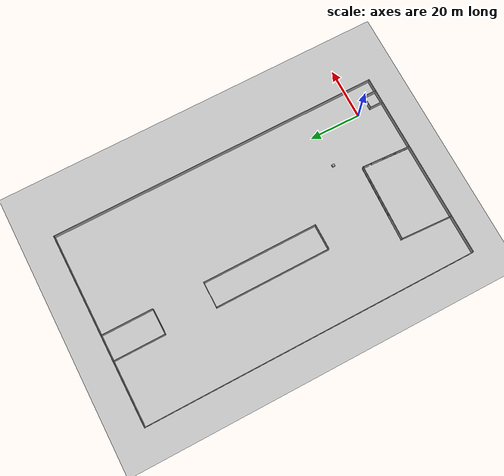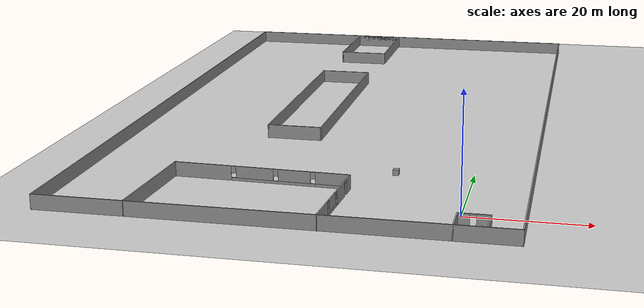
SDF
<sdf version="1.4">
 <world name="default">
  <physics type="ode">
   <max_step_size>0.002</max_step_size>
   <real_time_update_rate>500</real_time_update_rate>
   <real_time_factor>1</real_time_factor>
   <gravity>0 0 -9.8</gravity>
  </physics>
  <light name="sun" type="directional">
   <pose>0 0 10 0 -0 0</pose>
   <diffuse>0.8 0.8 0.8 1</diffuse>
   <specular>0.2 0.2 0.2 1</specular>
   <attenuation>
    <range>1000</range>
    <constant>0.9</constant>
    <linear>0.01</linear>
    <quadratic>0.001</quadratic>
   </attenuation>
   <direction>-0.5 0.1 -0.9</direction>
  </light>
  <model name="ground_plane">
   <static>1</static>
   <link name="link">
    <collision name="collision">
     <geometry><plane><normal>0 0 1</normal><size>75 130</size></plane></geometry>
     <pose>-27.5 55 0 0 -0 0</pose>
     <surface><friction><ode><mu>100</mu><mu2>50</mu2></ode></friction></surface>
    </collision>
    <visual name="visual">
     <cast_shadows>0</cast_shadows>
     <pose>-27.5 55 0 0 -0 0</pose>
     <geometry><plane><normal>0 0 1</normal><size>75 130</size></plane></geometry>
     <material>
      <script><uri>file://media/materials/scripts/gazebo.material</uri><name>Gazebo/Grey</name></script>
     </material>
    </visual>
    <velocity_decay><linear>0</linear><angular>0</angular></velocity_decay>
   </link>
  </model>
  <model name="saint_cyr_limits">
   <link name="Wall_27">
    <collision name="Wall_27_Collision">
     <geometry><box><size>75.2 0.2 2.5</size></box></geometry>
     <pose>0 0 1.25 0 -0 0</pose>
    </collision>
    <visual name="Wall_27_Visual">
     <pose>0 0 1.25 0 -0 0</pose>
     <geometry><box><size>75.2 0.2 2.5</size></box></geometry>
     <material>
      <script><uri>file://media/materials/scripts/gazebo.material</uri><name>Gazebo/Grey</name></script>
     </material>
    </visual>
    <velocity_decay><linear>0</linear><angular>0</angular></velocity_decay>
    <pose>-27.5 -10 0 0 -0 0</pose>
   </link>
   <link name="Wall_29">
    <collision name="Wall_29_Collision">
     <geometry><box><size>130.2 0.2 2.5</size></box></geometry>
     <pose>0 0 1.25 0 -0 0</pose>
    </collision>
    <visual name="Wall_29_Visual">
     <pose>0 0 1.25 0 -0 0</pose>
     <geometry><box><size>130.2 0.2 2.5</size></box></geometry>
     <material>
      <script><uri>file://media/materials/scripts/gazebo.material</uri><name>Gazebo/Grey</name></script>
     </material>
    </visual>
    <velocity_decay><linear>0</linear><angular>0</angular></velocity_decay>
    <pose>10 55 0 0 -0 1.5708</pose>
   </link>
   <link name="Wall_31">
    <collision name="Wall_31_Collision">
     <geometry><box><size>75.2 0.2 2.5</size></box></geometry>
     <pose>0 0 1.25 0 -0 0</pose>
    </collision>
    <visual name="Wall_31_Visual">
     <pose>0 0 1.25 0 -0 0</pose>
     <geometry><box><size>75.2 0.2 2.5</size></box></geometry>
     <material>
      <script><uri>file://media/materials/scripts/gazebo.material</uri><name>Gazebo/Grey</name></script>
     </material>
    </visual>
    <velocity_decay><linear>0</linear><angular>0</angular></velocity_decay>
    <pose>-27.5 120 0 0 -0 3.14159</pose>
   </link>
   <link name="Wall_33">
    <collision name="Wall_33_Collision">
     <geometry><box><size>130.2 0.2 2.5</size></box></geometry>
     <pose>0 0 1.25 0 -0 0</pose>
    </collision>
    <visual name="Wall_33_Visual">
     <pose>0 0 1.25 0 -0 0</pose>
     <geometry><box><size>130.2 0.2 2.5</size></box></geometry>
     <material>
      <script><uri>file://media/materials/scripts/gazebo.material</uri><name>Gazebo/Grey</name></script>
     </material>
    </visual>
    <velocity_decay><linear>0</linear><angular>0</angular></velocity_decay>
    <pose>-65 55 0 0 0 -1.5708</pose>
   </link>
   <static>1</static>
  </model>
  <model name="saint_cyr_trees">
   <link name="Wall_0">
    <collision name="Wall_0_Collision">
     <geometry><box><size>20.225 0.2 2.5</size></box></geometry>
     <pose>0 0 1.25 0 -0 0</pose>
    </collision>
    <visual name="Wall_0_Visual">
     <pose>0 0 1.25 0 -0 0</pose>
     <geometry><box><size>20.225 0.2 2.5</size></box></geometry>
     <material>
      <script><uri>file://media/materials/scripts/gazebo.material</uri><name>Gazebo/Grey</name></script>
     </material>
    </visual>
    <velocity_decay><linear>0</linear><angular>0</angular></velocity_decay>
    <pose>-49.5 0 0 0 -0 1.52084</pose>
   </link>
   <link name="Wall_1">
    <pose>-34 9.5 0 0 0 -0.033321</pose>
    <visual name="Wall_1_Visual_0">
     <pose>-10.1177 0 1.25 0 -0 0</pose>
     <geometry><box><size>9.98129 0.2 2.5</size></box></geometry>
     <material>
      <script><uri>file://media/materials/scripts/gazebo.material</uri><name>Gazebo/Grey</name></script>
     </material>
    </visual>
    <collision name="Wall_1_Collision_0">
     <geometry><box><size>9.98129 0.2 2.5</size></box></geometry>
     <pose>-10.1177 0 1.25 0 -0 0</pose>
    </collision>
    <visual name="Wall_1_Visual_1">
     <pose>4.99065 0 0.25 0 -0 0</pose>
     <geometry><box><size>20.2354 0.2 0.5</size></box></geometry>
     <material>
      <script><uri>file://media/materials/scripts/gazebo.material</uri><name>Gazebo/Grey</name></script>
     </material>
    </visual>
    <collision name="Wall_1_Collision_1">
     <geometry><box><size>20.2354 0.2 0.5</size></box></geometry>
     <pose>4.99065 0 0.25 0 -0 0</pose>
    </collision>
    <visual name="Wall_1_Visual_2">
     <pose>-1.11012 0 1.5 0 -0 0</pose>
     <geometry><box><size>6.43387 0.2 2</size></box></geometry>
     <material>
      <script><uri>file://media/materials/scripts/gazebo.material</uri><name>Gazebo/Grey</name></script>
     </material>
    </visual>
    <collision name="Wall_1_Collision_2">
     <geometry><box><size>6.43387 0.2 2</size></box></geometry>
     <pose>-1.11012 0 1.5 0 -0 0</pose>
    </collision>
    <visual name="Wall_1_Visual_3">
     <pose>5.65364 0 1.5 0 -0 0</pose>
     <geometry><box><size>5.49367 0.2 2</size></box></geometry>
     <material>
      <script><uri>file://media/materials/scripts/gazebo.material</uri><name>Gazebo/Grey</name></script>
     </material>
    </visual>
    <collision name="Wall_1_Collision_3">
     <geometry><box><size>5.49367 0.2 2</size></box></geometry>
     <pose>5.65364 0 1.5 0 -0 0</pose>
    </collision>
    <visual name="Wall_1_Visual_4">
     <pose>12.1544 0 1.5 0 -0 0</pose>
     <geometry><box><size>5.90787 0.2 2</size></box></geometry>
     <material>
      <script><uri>file://media/materials/scripts/gazebo.material</uri><name>Gazebo/Grey</name></script>
     </material>
    </visual>
    <collision name="Wall_1_Collision_4">
     <geometry><box><size>5.90787 0.2 2</size></box></geometry>
     <pose>12.1544 0 1.5 0 -0 0</pose>
    </collision>
    <visual name="Wall_1_Visual_5">
     <pose>-4.72706 0 1.9 0 -0 0</pose>
     <geometry><box><size>0.8 0.2 1.2</size></box></geometry>
     <material>
      <script><uri>file://media/materials/scripts/gazebo.material</uri><name>Gazebo/Grey</name></script>
     </material>
    </visual>
    <collision name="Wall_1_Collision_5">
     <geometry><box><size>0.8 0.2 1.2</size></box></geometry>
     <pose>-4.72706 0 1.9 0 -0 0</pose>
    </collision>
    <visual name="Wall_1_Visual_6">
     <pose>2.50681 0 1.9 0 -0 0</pose>
     <geometry><box><size>0.8 0.2 1.2</size></box></geometry>
     <material>
      <script><uri>file://media/materials/scripts/gazebo.material</uri><name>Gazebo/Grey</name></script>
     </material>
    </visual>
    <collision name="Wall_1_Collision_6">
     <geometry><box><size>0.8 0.2 1.2</size></box></geometry>
     <pose>2.50681 0 1.9 0 -0 0</pose>
    </collision>
    <visual name="Wall_1_Visual_7">
     <pose>8.80048 0 1.9 0 -0 0</pose>
     <geometry><box><size>0.8 0.2 1.2</size></box></geometry>
     <material>
      <script><uri>file://media/materials/scripts/gazebo.material</uri><name>Gazebo/Grey</name></script>
     </material>
    </visual>
    <collision name="Wall_1_Collision_7">
     <geometry><box><size>0.8 0.2 1.2</size></box></geometry>
     <pose>8.80048 0 1.9 0 -0 0</pose>
    </collision>
    <velocity_decay><linear>0</linear><angular>0</angular></velocity_decay>
   </link>
   <link name="Wall_10">
    <collision name="Wall_10_Collision">
     <geometry><box><size>45.2 0.2 2.5</size></box></geometry>
     <pose>0 0 1.25 0 -0 0</pose>
    </collision>
    <visual name="Wall_10_Visual">
     <pose>0 0 1.25 0 -0 0</pose>
     <geometry><box><size>45.2 0.2 2.5</size></box></geometry>
     <material>
      <script><uri>file://media/materials/scripts/gazebo.material</uri><name>Gazebo/Grey</name></script>
     </material>
    </visual>
    <velocity_decay><linear>0</linear><angular>0</angular></velocity_decay>
    <pose>-30 57.5 0 0 -0 1.5708</pose>
   </link>
   <link name="Wall_11">
    <collision name="Wall_11_Collision">
     <geometry><box><size>10.2 0.2 2.5</size></box></geometry>
     <pose>0 0 1.25 0 -0 0</pose>
    </collision>
    <visual name="Wall_11_Visual">
     <pose>0 0 1.25 0 -0 0</pose>
     <geometry><box><size>10.2 0.2 2.5</size></box></geometry>
     <material>
      <script><uri>file://media/materials/scripts/gazebo.material</uri><name>Gazebo/Grey</name></script>
     </material>
    </visual>
    <velocity_decay><linear>0</linear><angular>0</angular></velocity_decay>
    <pose>-35 80 0 0 -0 3.14159</pose>
   </link>
   <link name="Wall_13">
    <collision name="Wall_13_Collision">
     <geometry><box><size>20.2 0.2 2.5</size></box></geometry>
     <pose>0 0 1.25 0 -0 0</pose>
    </collision>
    <visual name="Wall_13_Visual">
     <pose>0 0 1.25 0 -0 0</pose>
     <geometry><box><size>20.2 0.2 2.5</size></box></geometry>
     <material>
      <script><uri>file://media/materials/scripts/gazebo.material</uri><name>Gazebo/Grey</name></script>
     </material>
    </visual>
    <velocity_decay><linear>0</linear><angular>0</angular></velocity_decay>
    <pose>-40 110 0 0 0 -1.5708</pose>
   </link>
   <link name="Wall_14">
    <collision name="Wall_14_Collision">
     <geometry><box><size>10.2 0.2 2.5</size></box></geometry>
     <pose>0 0 1.25 0 -0 0</pose>
    </collision>
    <visual name="Wall_14_Visual">
     <pose>0 0 1.25 0 -0 0</pose>
     <geometry><box><size>10.2 0.2 2.5</size></box></geometry>
     <material>
      <script><uri>file://media/materials/scripts/gazebo.material</uri><name>Gazebo/Grey</name></script>
     </material>
    </visual>
    <velocity_decay><linear>0</linear><angular>0</angular></velocity_decay>
    <pose>-35 100 0 0 -0 0</pose>
   </link>
   <link name="Wall_15">
    <collision name="Wall_15_Collision">
     <geometry><box><size>20.2 0.2 2.5</size></box></geometry>
     <pose>0 0 1.25 0 -0 0</pose>
    </collision>
    <visual name="Wall_15_Visual">
     <pose>0 0 1.25 0 -0 0</pose>
     <geometry><box><size>20.2 0.2 2.5</size></box></geometry>
     <material>
      <script><uri>file://media/materials/scripts/gazebo.material</uri><name>Gazebo/Grey</name></script>
     </material>
    </visual>
    <velocity_decay><linear>0</linear><angular>0</angular></velocity_decay>
    <pose>-30 110 0 0 -0 1.5708</pose>
   </link>
   <link name="Wall_16">
    <collision name="Wall_16_Collision">
     <geometry><box><size>10.2 0.2 2.5</size></box></geometry>
     <pose>0 0 1.25 0 -0 0</pose>
    </collision>
    <visual name="Wall_16_Visual">
     <pose>0 0 1.25 0 -0 0</pose>
     <geometry><box><size>10.2 0.2 2.5</size></box></geometry>
     <material>
      <script><uri>file://media/materials/scripts/gazebo.material</uri><name>Gazebo/Grey</name></script>
     </material>
    </visual>
    <velocity_decay><linear>0</linear><angular>0</angular></velocity_decay>
    <pose>-35 120 0 0 -0 3.14159</pose>
   </link>
   <link name="Wall_2">
    <pose>-19.5 -0.5 0 0 0 -1.62338</pose>
    <visual name="Wall_2_Visual_0">
     <pose>-8.31308 0 1.25 0 -0 0</pose>
     <geometry><box><size>2.60014 0.2 2.5</size></box></geometry>
     <material>
      <script><uri>file://media/materials/scripts/gazebo.material</uri><name>Gazebo/Grey</name></script>
     </material>
    </visual>
    <collision name="Wall_2_Collision_0">
     <geometry><box><size>2.60014 0.2 2.5</size></box></geometry>
     <pose>-8.31308 0 1.25 0 -0 0</pose>
    </collision>
    <visual name="Wall_2_Visual_1">
     <pose>-3.68568 0 1.25 0 -0 0</pose>
     <geometry><box><size>4.65465 0.2 2.5</size></box></geometry>
     <material>
      <script><uri>file://media/materials/scripts/gazebo.material</uri><name>Gazebo/Grey</name></script>
     </material>
    </visual>
    <collision name="Wall_2_Collision_1">
     <geometry><box><size>4.65465 0.2 2.5</size></box></geometry>
     <pose>-3.68568 0 1.25 0 -0 0</pose>
    </collision>
    <visual name="Wall_2_Visual_2">
     <pose>4.1274 0 0.25 0 -0 0</pose>
     <geometry><box><size>10.9715 0.2 0.5</size></box></geometry>
     <material>
      <script><uri>file://media/materials/scripts/gazebo.material</uri><name>Gazebo/Grey</name></script>
     </material>
    </visual>
    <collision name="Wall_2_Collision_2">
     <geometry><box><size>10.9715 0.2 0.5</size></box></geometry>
     <pose>4.1274 0 0.25 0 -0 0</pose>
    </collision>
    <visual name="Wall_2_Visual_3">
     <pose>1.25925 0 1.5 0 -0 0</pose>
     <geometry><box><size>3.63521 0.2 2</size></box></geometry>
     <material>
      <script><uri>file://media/materials/scripts/gazebo.material</uri><name>Gazebo/Grey</name></script>
     </material>
    </visual>
    <collision name="Wall_2_Collision_3">
     <geometry><box><size>3.63521 0.2 2</size></box></geometry>
     <pose>1.25925 0 1.5 0 -0 0</pose>
    </collision>
    <visual name="Wall_2_Visual_4">
     <pose>6.745 0 1.5 0 -0 0</pose>
     <geometry><box><size>5.7363 0.2 2</size></box></geometry>
     <material>
      <script><uri>file://media/materials/scripts/gazebo.material</uri><name>Gazebo/Grey</name></script>
     </material>
    </visual>
    <collision name="Wall_2_Collision_4">
     <geometry><box><size>5.7363 0.2 2</size></box></geometry>
     <pose>6.745 0 1.5 0 -0 0</pose>
    </collision>
    <visual name="Wall_2_Visual_5">
     <pose>-0.958357 0 1.9 0 -0 0</pose>
     <geometry><box><size>0.8 0.2 1.2</size></box></geometry>
     <material>
      <script><uri>file://media/materials/scripts/gazebo.material</uri><name>Gazebo/Grey</name></script>
     </material>
    </visual>
    <collision name="Wall_2_Collision_5">
     <geometry><box><size>0.8 0.2 1.2</size></box></geometry>
     <pose>-0.958357 0 1.9 0 -0 0</pose>
    </collision>
    <visual name="Wall_2_Visual_6">
     <pose>3.47685 0 1.9 0 -0 0</pose>
     <geometry><box><size>0.8 0.2 1.2</size></box></geometry>
     <material>
      <script><uri>file://media/materials/scripts/gazebo.material</uri><name>Gazebo/Grey</name></script>
     </material>
    </visual>
    <collision name="Wall_2_Collision_6">
     <geometry><box><size>0.8 0.2 1.2</size></box></geometry>
     <pose>3.47685 0 1.9 0 -0 0</pose>
    </collision>
    <visual name="Wall_2_Visual_7">
     <pose>-6.51301 0 2.25 0 -0 0</pose>
     <geometry><box><size>1 0.2 0.5</size></box></geometry>
     <material>
      <script><uri>file://media/materials/scripts/gazebo.material</uri><name>Gazebo/Grey</name></script>
     </material>
    </visual>
    <collision name="Wall_2_Collision_7">
     <geometry><box><size>1 0.2 0.5</size></box></geometry>
     <pose>-6.51301 0 2.25 0 -0 0</pose>
    </collision>
    <velocity_decay><linear>0</linear><angular>0</angular></velocity_decay>
   </link>
   <link name="Wall_4">
    <collision name="Wall_4_Collision">
     <geometry><box><size>5.2 0.2 2.5</size></box></geometry>
     <pose>0 0 1.25 0 -0 0</pose>
    </collision>
    <visual name="Wall_4_Visual">
     <pose>0 0 1.25 0 -0 0</pose>
     <geometry><box><size>5.2 0.2 2.5</size></box></geometry>
     <material>
      <script><uri>file://media/materials/scripts/gazebo.material</uri><name>Gazebo/Grey</name></script>
     </material>
    </visual>
    <velocity_decay><linear>0</linear><angular>0</angular></velocity_decay>
    <pose>0 -7.5 0 0 -0 1.5708</pose>
   </link>
   <link name="Wall_5">
    <pose>2.5 -5 0 0 -0 0</pose>
    <visual name="Wall_5_Visual_0">
     <pose>-1.61975 0 1.25 0 -0 0</pose>
     <geometry><box><size>1.9605 0.2 2.5</size></box></geometry>
     <material>
      <script><uri>file://media/materials/scripts/gazebo.material</uri><name>Gazebo/Grey</name></script>
     </material>
    </visual>
    <collision name="Wall_5_Collision_0">
     <geometry><box><size>1.9605 0.2 2.5</size></box></geometry>
     <pose>-1.61975 0 1.25 0 -0 0</pose>
    </collision>
    <visual name="Wall_5_Visual_1">
     <pose>1.48025 0 1.25 0 -0 0</pose>
     <geometry><box><size>2.2395 0.2 2.5</size></box></geometry>
     <material>
      <script><uri>file://media/materials/scripts/gazebo.material</uri><name>Gazebo/Grey</name></script>
     </material>
    </visual>
    <collision name="Wall_5_Collision_1">
     <geometry><box><size>2.2395 0.2 2.5</size></box></geometry>
     <pose>1.48025 0 1.25 0 -0 0</pose>
    </collision>
    <visual name="Wall_5_Visual_2">
     <pose>-0.139498 0 2.25 0 -0 0</pose>
     <geometry><box><size>1 0.2 0.5</size></box></geometry>
     <material>
      <script><uri>file://media/materials/scripts/gazebo.material</uri><name>Gazebo/Grey</name></script>
     </material>
    </visual>
    <collision name="Wall_5_Collision_2">
     <geometry><box><size>1 0.2 0.5</size></box></geometry>
     <pose>-0.139498 0 2.25 0 -0 0</pose>
    </collision>
    <velocity_decay><linear>0</linear><angular>0</angular></velocity_decay>
   </link>
   <link name="Wall_6">
    <collision name="Wall_6_Collision">
     <geometry><box><size>5.2 0.2 2.5</size></box></geometry>
     <pose>0 0 1.25 0 -0 0</pose>
    </collision>
    <visual name="Wall_6_Visual">
     <pose>0 0 1.25 0 -0 0</pose>
     <geometry><box><size>5.2 0.2 2.5</size></box></geometry>
     <material>
      <script><uri>file://media/materials/scripts/gazebo.material</uri><name>Gazebo/Grey</name></script>
     </material>
    </visual>
    <velocity_decay><linear>0</linear><angular>0</angular></velocity_decay>
    <pose>5 -7.5 0 0 0 -1.5708</pose>
   </link>
   <link name="Wall_8">
    <collision name="Wall_8_Collision">
     <geometry><box><size>45.2 0.2 2.5</size></box></geometry>
     <pose>0 0 1.25 0 -0 0</pose>
    </collision>
    <visual name="Wall_8_Visual">
     <pose>0 0 1.25 0 -0 0</pose>
     <geometry><box><size>45.2 0.2 2.5</size></box></geometry>
     <material>
      <script><uri>file://media/materials/scripts/gazebo.material</uri><name>Gazebo/Grey</name></script>
     </material>
    </visual>
    <velocity_decay><linear>0</linear><angular>0</angular></velocity_decay>
    <pose>-40 57.5 0 0 0 -1.5708</pose>
   </link>
   <link name="Wall_9">
    <collision name="Wall_9_Collision">
     <geometry><box><size>10.2 0.2 2.5</size></box></geometry>
     <pose>0 0 1.25 0 -0 0</pose>
    </collision>
    <visual name="Wall_9_Visual">
     <pose>0 0 1.25 0 -0 0</pose>
     <geometry><box><size>10.2 0.2 2.5</size></box></geometry>
     <material>
      <script><uri>file://media/materials/scripts/gazebo.material</uri><name>Gazebo/Grey</name></script>
     </material>
    </visual>
    <velocity_decay><linear>0</linear><angular>0</angular></velocity_decay>
    <pose>-35 35 0 0 -0 0</pose>
   </link>
   <static>1</static>
  </model>
  <scene><ambient>0.4 0.4 0.4 1</ambient><background>0.7 0.7 0.7 1</background><shadows>1</shadows></scene>
  <spherical_coordinates>
   <surface_model>EARTH_WGS84</surface_model>
   <latitude_deg>0</latitude_deg>
   <longitude_deg>0</longitude_deg>
   <elevation>0</elevation>
   <heading_deg>0</heading_deg>
  </spherical_coordinates>
  <model name="unit_box_1">
   <pose>-13 18 0.5 0 -0 0</pose>
   <link name="link">
    <inertial>
     <mass>1</mass>
     <inertia><ixx>1</ixx><ixy>0</ixy><ixz>0</ixz><iyy>1</iyy><iyz>0</iyz><izz>1</izz></inertia>
    </inertial>
    <collision name="collision"><geometry><box><size>1 1 1</size></box></geometry></collision>
    <visual name="visual">
     <geometry><box><size>1 1 1</size></box></geometry>
     <material>
      <script><uri>file://media/materials/scripts/gazebo.material</uri><name>Gazebo/Grey</name></script>
     </material>
    </visual>
    <velocity_decay><linear>0</linear><angular>0</angular></velocity_decay>
   </link>
   <static>0</static>
  </model>
 </world>
</sdf>
